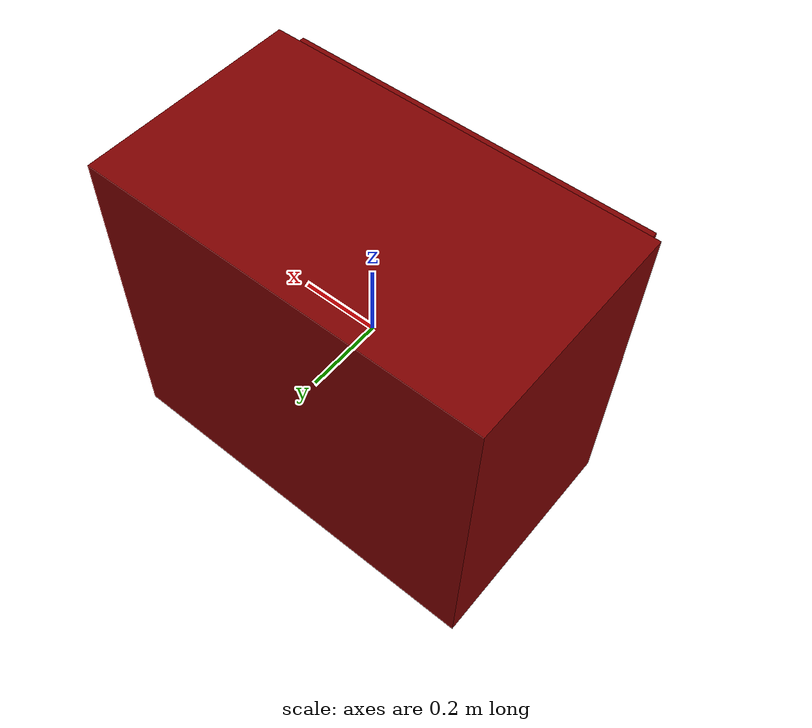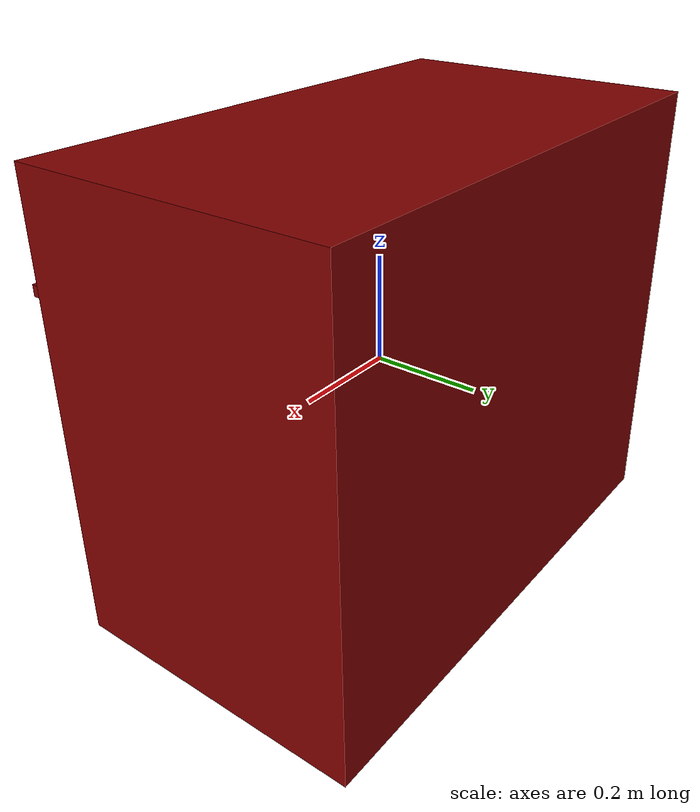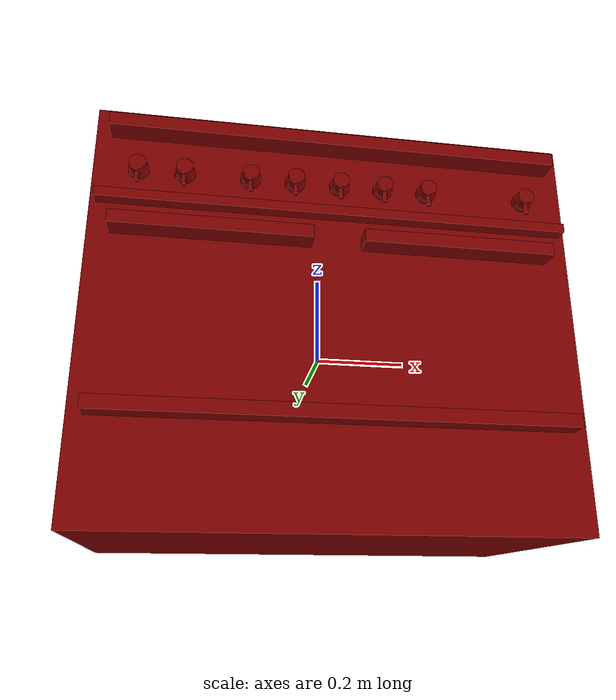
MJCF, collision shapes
<mujoco model="model">
  <asset>
    <texture type="2d" name="image0" file="visuals/image0.png"/>
    <texture type="2d" name="image21" file="visuals/image21.png"/>
    <texture type="2d" name="image24" file="visuals/image24.png"/>
    <texture type="2d" name="image27" file="visuals/image27.png"/>
    <texture type="2d" name="image4" file="visuals/image4.png"/>
    <texture type="2d" name="image11" file="visuals/image11.png"/>
    <texture type="2d" name="image15" file="visuals/image15.png"/>
    <texture type="2d" name="image18" file="visuals/image18.png"/>
    <material name="Bronze_Bare" texture="image0" specular="0.5" shininess="0.25"/>
    <material name="Brushed_Aluminium_2" texture="image21" specular="0.5" shininess="0.25"/>
    <material name="Brushed_chrome" texture="image24" specular="0.5" shininess="0.25"/>
    <material name="Dirty_Shiny_Plastic" texture="image27" specular="0.5" shininess="0.25"/>
    <material name="Material.001" specular="0.5" shininess="0.071239044" rgba="0.000000 0.000000 0.000000 1.000000"/>
    <material name="Stove_black_plastick" texture="image4" specular="0.5" shininess="0.25"/>
    <material name="oven_colored_metal" texture="image27" specular="0.5" shininess="0.25"/>
    <material name="plastic_jars" specular="0.5" shininess="0.0375" rgba="0.800000 0.800000 0.800000 0.250000"/>
    <material name="stainless_steel" texture="image11" specular="0.5" shininess="0.25"/>
    <material name="stainless_steel_oven_plate" texture="image15" specular="0.5" shininess="0.25"/>
    <material name="stove_top_grills" texture="image18" specular="0.5" shininess="0.25"/>
    <mesh file="visuals/model_0.obj" name="model_0_vis" scale="1 1 1"/>
    <mesh file="visuals/model_1.obj" name="model_1_vis" scale="1 1 1"/>
    <mesh file="visuals/model_2.obj" name="model_2_vis" scale="1 1 1"/>
    <mesh file="visuals/model_3.obj" name="model_3_vis" scale="1 1 1"/>
    <mesh file="visuals/model_4.obj" name="model_4_vis" scale="1 1 1"/>
    <mesh file="visuals/model_5.obj" name="model_5_vis" scale="1 1 1"/>
    <mesh file="visuals/model_7.obj" name="model_7_vis" scale="1 1 1"/>
    <mesh file="visuals/model_8.obj" name="model_8_vis" scale="1 1 1"/>
    <mesh file="visuals/model_9.obj" name="model_9_vis" scale="1 1 1"/>
    <mesh file="visuals/model_10.obj" name="model_10_vis" scale="1 1 1"/>
    <mesh file="visuals/knob_oven_left_0.obj" name="knob_oven_left_0_vis" scale="1 1 1"/>
    <mesh file="visuals/knob_oven_left_1.obj" name="knob_oven_left_1_vis" scale="1 1 1"/>
    <mesh file="visuals/knob_rear_center_0.obj" name="knob_rear_center_0_vis" scale="1 1 1"/>
    <mesh file="visuals/knob_rear_center_1.obj" name="knob_rear_center_1_vis" scale="1 1 1"/>
    <mesh file="visuals/knob_front_center_0.obj" name="knob_front_center_0_vis" scale="1 1 1"/>
    <mesh file="visuals/knob_front_center_1.obj" name="knob_front_center_1_vis" scale="1 1 1"/>
    <mesh file="visuals/knob_rear_right_0.obj" name="knob_rear_right_0_vis" scale="1 1 1"/>
    <mesh file="visuals/knob_rear_right_1.obj" name="knob_rear_right_1_vis" scale="1 1 1"/>
    <mesh file="visuals/knob_oven_right_0.obj" name="knob_oven_right_0_vis" scale="1 1 1"/>
    <mesh file="visuals/knob_oven_right_1.obj" name="knob_oven_right_1_vis" scale="1 1 1"/>
    <mesh file="visuals/knob_front_left_0.obj" name="knob_front_left_0_vis" scale="1 1 1"/>
    <mesh file="visuals/knob_front_left_1.obj" name="knob_front_left_1_vis" scale="1 1 1"/>
    <mesh file="visuals/knob_front_right_0.obj" name="knob_front_right_0_vis" scale="1 1 1"/>
    <mesh file="visuals/knob_front_right_1.obj" name="knob_front_right_1_vis" scale="1 1 1"/>
    <mesh file="visuals/knob_rear_left_0.obj" name="knob_rear_left_0_vis" scale="1 1 1"/>
    <mesh file="visuals/knob_rear_left_1.obj" name="knob_rear_left_1_vis" scale="1 1 1"/>
  </asset>
  <default>
    <default class="visual">
      <geom conaffinity="0" contype="0" group="1" type="mesh"/>
    </default>
    <default class="collision">
      <geom group="0" rgba="0.5 0 0 0.5"/>
    </default>
    <default class="region">
      <geom group="1" conaffinity="0" contype="0" rgba="0 1 0 0"/>
    </default>
  </default>
  <worldbody>
    <body>
      <!-- exterior bounding box points -->
      <!-- interior bounding box points -->
      <body name="object">
        <geom solimp="0.998 0.998 0.001" solref="0.001 1" density="100" friction="0.95 0.3 0.1" type="mesh" mesh="model_0_vis" material="Stove_black_plastick" class="visual"/>
        <geom solimp="0.998 0.998 0.001" solref="0.001 1" density="100" friction="0.95 0.3 0.1" type="mesh" mesh="model_1_vis" material="stove_top_grills" class="visual"/>
        <geom solimp="0.998 0.998 0.001" solref="0.001 1" density="100" friction="0.95 0.3 0.1" type="mesh" mesh="model_2_vis" material="stainless_steel_oven_plate" class="visual"/>
        <geom solimp="0.998 0.998 0.001" solref="0.001 1" density="100" friction="0.95 0.3 0.1" type="mesh" mesh="model_3_vis" material="stainless_steel" class="visual"/>
        <geom solimp="0.998 0.998 0.001" solref="0.001 1" density="100" friction="0.95 0.3 0.1" type="mesh" mesh="model_4_vis" material="plastic_jars" class="visual"/>
        <geom solimp="0.998 0.998 0.001" solref="0.001 1" density="100" friction="0.95 0.3 0.1" type="mesh" mesh="model_5_vis" material="oven_colored_metal" class="visual"/>
        <geom solimp="0.998 0.998 0.001" solref="0.001 1" density="100" friction="0.95 0.3 0.1" type="mesh" mesh="model_7_vis" material="Dirty_Shiny_Plastic" class="visual"/>
        <geom solimp="0.998 0.998 0.001" solref="0.001 1" density="100" friction="0.95 0.3 0.1" type="mesh" mesh="model_8_vis" material="Brushed_chrome" class="visual"/>
        <geom solimp="0.998 0.998 0.001" solref="0.001 1" density="100" friction="0.95 0.3 0.1" type="mesh" mesh="model_9_vis" material="Brushed_Aluminium_2" class="visual"/>
        <geom solimp="0.998 0.998 0.001" solref="0.001 1" density="100" friction="0.95 0.3 0.1" type="mesh" mesh="model_10_vis" material="Bronze_Bare" class="visual"/>
        <site name="burner_on_front_left" pos="-0.3425 -0.1165 0.418" size="0.04 0.008" rgba="0.3 0.4 1 0.5" type="cylinder"/>
        <site name="burner_on_front_center" pos="-0.003 -0.12 0.42" size="0.055 0.008" rgba="0.3 0.4 1 0.5" type="cylinder"/>
        <site name="burner_on_front_right" pos="0.3425 -0.12 0.416" size="0.033 0.008" rgba="0.3 0.4 1 0.5" type="cylinder"/>
        <site name="burner_on_rear_left" pos="-0.342 0.1475 0.417" size="0.037 0.0072" rgba="0.3 0.4 1 0.5" type="cylinder"/>
        <site name="burner_on_rear_center" pos="-0.003 0.147 0.42" size="0.05 0.008" rgba="0.3 0.4 1 0.5" type="cylinder"/>
        <site name="burner_on_rear_right" pos="0.3427 0.1457 0.416" size="0.03 0.008" rgba="0.3 0.4 1 0.5" type="cylinder"/>
        <!-- Main -->
        <geom class="collision" type="box" pos="0 0.0225 0.01" size="0.5 0.286 0.427"/>
        <!-- Upper Handle -->
        <geom class="collision" type="box" pos="0 -0.285 0.3868" size="0.471 0.025 0.0137"/>
        <!-- Drawer Handle -->
        <geom class="collision" type="box" pos="0 -0.285 -0.2" size="0.471 0.025 0.0137"/>
        <!-- Left Oven Handle -->
        <geom class="collision" type="box" pos="-0.2565 -0.285 0.1675" size="0.201 0.025 0.0137"/>
        <!-- Right Oven Handle -->
        <geom class="collision" type="box" pos="0.25 -0.285 0.1675" size="0.201 0.025 0.0137"/>
        <!-- Ledge -->
        <geom class="collision" type="box" pos="0 -0.276 0.23" size="0.49 0.015 0.01"/>
        <body name="knob_oven_left">
          <joint axis="0 1 0" name="knob_oven_left_joint" damping="1" pos="-0.1834 -0.268 0.299"/>
          <geom solimp="0.998 0.998 0.001" solref="0.001 1" density="100" friction="0.95 0.3 0.1" type="mesh" mesh="knob_oven_left_0_vis" material="stainless_steel" class="visual"/>
          <geom solimp="0.998 0.998 0.001" solref="0.001 1" density="100" friction="0.95 0.3 0.1" type="mesh" mesh="knob_oven_left_1_vis" material="Stove_black_plastick" class="visual"/>
          <geom class="collision" type="cylinder" axisangle="1 0 0 90" pos="-0.1834 -0.268 0.299" size="0.021 0.005 0"/>
          <geom class="collision" type="cylinder" axisangle="1 0 0 90" pos="-0.1834 -0.285 0.299" size="0.017 0.012 0"/>
          <geom class="collision" type="cylinder" pos="-0.1834 -0.287 0.272" size="0.005 0.011 0"/>
        </body>
        <body name="knob_rear_center">
          <joint axis="0 1 0" name="knob_rear_center_joint" damping="1" pos="-0.0906 -0.268 0.299"/>
          <geom solimp="0.998 0.998 0.001" solref="0.001 1" density="100" friction="0.95 0.3 0.1" type="mesh" mesh="knob_rear_center_0_vis" material="stainless_steel" class="visual"/>
          <geom solimp="0.998 0.998 0.001" solref="0.001 1" density="100" friction="0.95 0.3 0.1" type="mesh" mesh="knob_rear_center_1_vis" material="Stove_black_plastick" class="visual"/>
          <geom class="collision" type="cylinder" axisangle="1 0 0 90" pos="-0.0906 -0.268 0.299" size="0.021 0.005 0"/>
          <geom class="collision" type="cylinder" axisangle="1 0 0 90" pos="-0.0906 -0.285 0.299" size="0.017 0.012 0"/>
          <geom class="collision" type="cylinder" pos="-0.0906 -0.287 0.272" size="0.005 0.011 0"/>
        </body>
        <body name="knob_front_center">
          <joint axis="0 1 0" name="knob_front_center_joint" damping="1" pos="0.0037 -0.268 0.299"/>
          <geom solimp="0.998 0.998 0.001" solref="0.001 1" density="100" friction="0.95 0.3 0.1" type="mesh" mesh="knob_front_center_0_vis" material="stainless_steel" class="visual"/>
          <geom solimp="0.998 0.998 0.001" solref="0.001 1" density="100" friction="0.95 0.3 0.1" type="mesh" mesh="knob_front_center_1_vis" material="Stove_black_plastick" class="visual"/>
          <geom class="collision" type="cylinder" axisangle="1 0 0 90" pos="0.0037 -0.268 0.299" size="0.021 0.005 0"/>
          <geom class="collision" type="cylinder" axisangle="1 0 0 90" pos="0.0037 -0.285 0.299" size="0.017 0.012 0"/>
          <geom class="collision" type="cylinder" pos="0.0037 -0.287 0.272" size="0.005 0.011 0"/>
        </body>
        <body name="knob_rear_right">
          <joint axis="0 1 0" name="knob_rear_right_joint" damping="1" pos="0.097 -0.268 0.299"/>
          <geom solimp="0.998 0.998 0.001" solref="0.001 1" density="100" friction="0.95 0.3 0.1" type="mesh" mesh="knob_rear_right_0_vis" material="stainless_steel" class="visual"/>
          <geom solimp="0.998 0.998 0.001" solref="0.001 1" density="100" friction="0.95 0.3 0.1" type="mesh" mesh="knob_rear_right_1_vis" material="Stove_black_plastick" class="visual"/>
          <geom class="collision" type="cylinder" axisangle="1 0 0 90" pos="0.097 -0.268 0.299" size="0.021 0.005 0"/>
          <geom class="collision" type="cylinder" axisangle="1 0 0 90" pos="0.097 -0.285 0.299" size="0.017 0.012 0"/>
          <geom class="collision" type="cylinder" pos="0.097 -0.287 0.272" size="0.005 0.011 0"/>
        </body>
        <body name="knob_oven_right">
          <joint axis="0 1 0" name="knob_oven_right_joint" damping="1" pos="0.4089 -0.268 0.299"/>
          <geom solimp="0.998 0.998 0.001" solref="0.001 1" density="100" friction="0.95 0.3 0.1" type="mesh" mesh="knob_oven_right_0_vis" material="stainless_steel" class="visual"/>
          <geom solimp="0.998 0.998 0.001" solref="0.001 1" density="100" friction="0.95 0.3 0.1" type="mesh" mesh="knob_oven_right_1_vis" material="Stove_black_plastick" class="visual"/>
          <geom class="collision" type="cylinder" axisangle="1 0 0 90" pos="0.4089 -0.268 0.299" size="0.021 0.005 0"/>
          <geom class="collision" type="cylinder" axisangle="1 0 0 90" pos="0.4089 -0.285 0.299" size="0.017 0.012 0"/>
          <geom class="collision" type="cylinder" pos="0.4089 -0.287 0.272" size="0.005 0.011 0"/>
        </body>
        <body name="knob_front_left">
          <joint axis="0 1 0" name="knob_front_left_joint" damping="1" pos="-0.3171 -0.268 0.299"/>
          <geom solimp="0.998 0.998 0.001" solref="0.001 1" density="100" friction="0.95 0.3 0.1" type="mesh" mesh="knob_front_left_0_vis" material="stainless_steel" class="visual"/>
          <geom solimp="0.998 0.998 0.001" solref="0.001 1" density="100" friction="0.95 0.3 0.1" type="mesh" mesh="knob_front_left_1_vis" material="Stove_black_plastick" class="visual"/>
          <geom class="collision" type="cylinder" axisangle="1 0 0 90" pos="-0.3171 -0.268 0.299" size="0.021 0.005 0"/>
          <geom class="collision" type="cylinder" axisangle="1 0 0 90" pos="-0.3171 -0.285 0.299" size="0.017 0.012 0"/>
          <geom class="collision" type="cylinder" pos="-0.3171 -0.287 0.272" size="0.005 0.011 0"/>
        </body>
        <body name="knob_front_right">
          <joint axis="0 1 0" name="knob_front_right_joint" damping="1" pos="0.1915 -0.268 0.299"/>
          <geom solimp="0.998 0.998 0.001" solref="0.001 1" density="100" friction="0.95 0.3 0.1" type="mesh" mesh="knob_front_right_0_vis" material="stainless_steel" class="visual"/>
          <geom solimp="0.998 0.998 0.001" solref="0.001 1" density="100" friction="0.95 0.3 0.1" type="mesh" mesh="knob_front_right_1_vis" material="Stove_black_plastick" class="visual"/>
          <geom class="collision" type="cylinder" axisangle="1 0 0 90" pos="0.1915 -0.268 0.299" size="0.021 0.005 0"/>
          <geom class="collision" type="cylinder" axisangle="1 0 0 90" pos="0.1915 -0.285 0.299" size="0.017 0.012 0"/>
          <geom class="collision" type="cylinder" pos="0.1915 -0.287 0.272" size="0.005 0.011 0"/>
        </body>
        <body name="knob_rear_left">
          <joint axis="0 1 0" name="knob_rear_left_joint" damping="1" pos="-0.41 -0.268 0.299"/>
          <geom solimp="0.998 0.998 0.001" solref="0.001 1" density="100" friction="0.95 0.3 0.1" type="mesh" mesh="knob_rear_left_0_vis" material="stainless_steel" class="visual"/>
          <geom solimp="0.998 0.998 0.001" solref="0.001 1" density="100" friction="0.95 0.3 0.1" type="mesh" mesh="knob_rear_left_1_vis" material="Stove_black_plastick" class="visual"/>
          <geom class="collision" type="cylinder" axisangle="1 0 0 90" pos="-0.41 -0.268 0.299" size="0.021 0.005 0"/>
          <geom class="collision" type="cylinder" axisangle="1 0 0 90" pos="-0.41 -0.285 0.299" size="0.017 0.012 0"/>
          <geom class="collision" type="cylinder" pos="-0.41 -0.287 0.272" size="0.005 0.011 0"/>
        </body>
        <geom class="region" name="reg_main" type="box" pos="0.0 0.022499999999999992 -0.0025000000000000022" size="0.5 0.28600000000000003 0.4145"/>
      </body>
    </body>
  </worldbody>
</mujoco>
